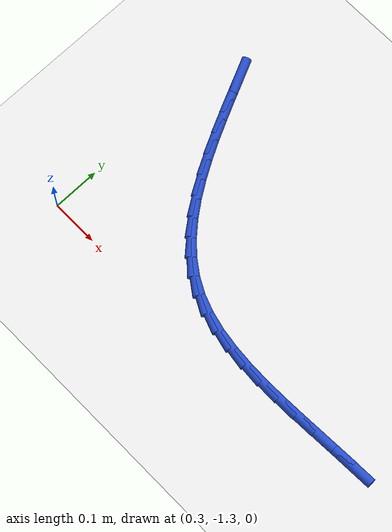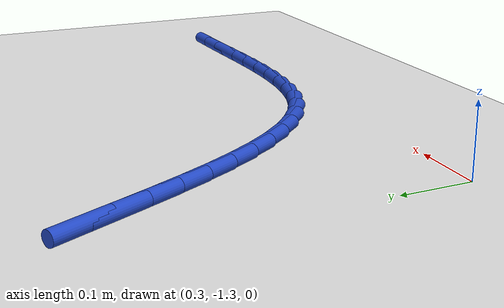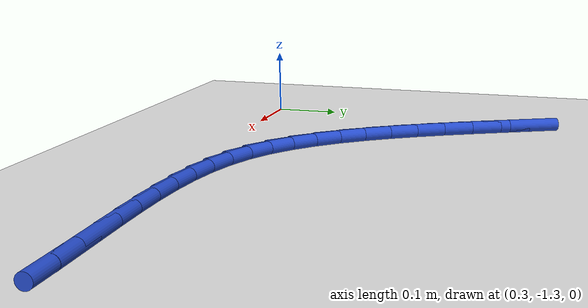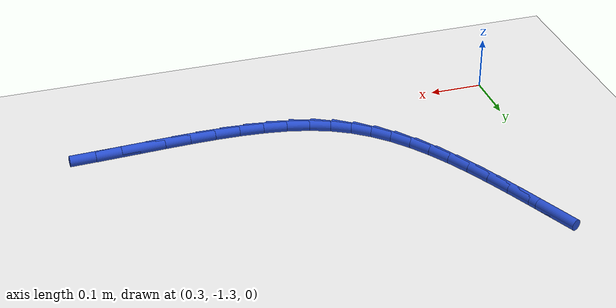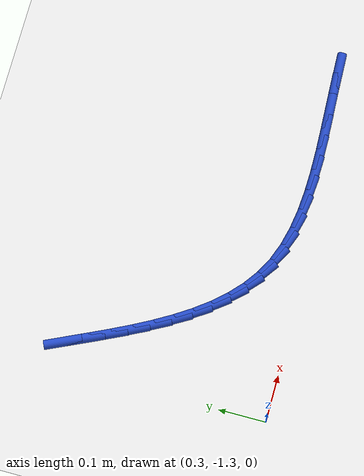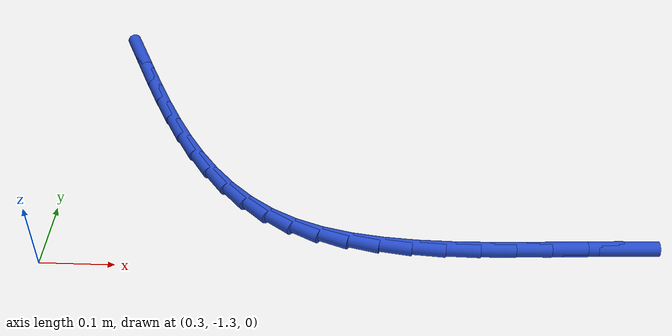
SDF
<sdf version="1.6">
 <world name="default">
  <model name="ground_plane">
   <static>1</static>
   <link name="link">
    <collision name="collision">
     <geometry><plane><normal>0 0 1</normal><size>100 100</size></plane></geometry>
     <surface><friction><ode><mu>100</mu><mu2>50</mu2></ode></friction></surface>
    </collision>
    <visual name="visual">
     <cast_shadows>0</cast_shadows>
     <geometry><plane><normal>0 0 1</normal><size>100 100</size></plane></geometry>
     <material>
      <script><uri>file://media/materials/scripts/gazebo.material</uri><name>Gazebo/WhiteGlow</name></script>
     </material>
    </visual>
   </link>
  </model>
  <model name="line">
   <link name="link_128">
    <pose>1.07136148986577 -1.2569779851877985 0.01 0 1.57 0.03686564870963123</pose>
    <collision name="collision">
     <geometry><cylinder><radius>0.01</radius><length>0.08</length></cylinder></geometry>
    </collision>
    <visual name="visual">
     <material>
      <script><name>Gazebo/Blue</name><uri>file://media/materials/scripts/gazebo.material</uri></script>
     </material>
     <geometry><cylinder><radius>0.01</radius><length>0.08</length></cylinder></geometry>
    </visual>
   </link>
   <link name="link_129">
    <pose>1.024706182088031 -1.2586987429923218 0.01 0 1.57 0.045401393632448245</pose>
    <collision name="collision">
     <geometry><cylinder><radius>0.01</radius><length>0.08</length></cylinder></geometry>
    </collision>
    <visual name="visual">
     <material>
      <script><name>Gazebo/Blue</name><uri>file://media/materials/scripts/gazebo.material</uri></script>
     </material>
     <geometry><cylinder><radius>0.01</radius><length>0.08</length></cylinder></geometry>
    </visual>
   </link>
   <link name="link_130">
    <pose>0.9776322644401926 -1.2608374341443453 0.01 0 1.57 0.04546782009390897</pose>
    <collision name="collision">
     <geometry><cylinder><radius>0.01</radius><length>0.08</length></cylinder></geometry>
    </collision>
    <visual name="visual">
     <material>
      <script><name>Gazebo/Blue</name><uri>file://media/materials/scripts/gazebo.material</uri></script>
     </material>
     <geometry><cylinder><radius>0.01</radius><length>0.08</length></cylinder></geometry>
    </visual>
   </link>
   <link name="link_131">
    <pose>0.9304930931655089 -1.2629822277004208 0.01 0 1.57 0.0336175679589889</pose>
    <collision name="collision">
     <geometry><cylinder><radius>0.01</radius><length>0.08</length></cylinder></geometry>
    </collision>
    <visual name="visual">
     <material>
      <script><name>Gazebo/Blue</name><uri>file://media/materials/scripts/gazebo.material</uri></script>
     </material>
     <geometry><cylinder><radius>0.01</radius><length>0.08</length></cylinder></geometry>
    </visual>
   </link>
   <link name="link_132">
    <pose>0.8836518907340699 -1.2645575084808893 0.01 0 1.57 0.00931442792893046</pose>
    <collision name="collision">
     <geometry><cylinder><radius>0.01</radius><length>0.08</length></cylinder></geometry>
    </collision>
    <visual name="visual">
     <material>
      <script><name>Gazebo/Blue</name><uri>file://media/materials/scripts/gazebo.material</uri></script>
     </material>
     <geometry><cylinder><radius>0.01</radius><length>0.08</length></cylinder></geometry>
    </visual>
   </link>
   <link name="link_133">
    <pose>0.8374718796159634 -1.2649876613060924 0.01 0 1.57 -0.028573181236360053</pose>
    <collision name="collision">
     <geometry><cylinder><radius>0.01</radius><length>0.08</length></cylinder></geometry>
    </collision>
    <visual name="visual">
     <material>
      <script><name>Gazebo/Blue</name><uri>file://media/materials/scripts/gazebo.material</uri></script>
     </material>
     <geometry><cylinder><radius>0.01</radius><length>0.08</length></cylinder></geometry>
    </visual>
   </link>
   <link name="link_134">
    <pose>0.7923162822812766 -1.263697070996371 0.01 0 1.57 -0.08177100924146376</pose>
    <collision name="collision">
     <geometry><cylinder><radius>0.01</radius><length>0.08</length></cylinder></geometry>
    </collision>
    <visual name="visual">
     <material>
      <script><name>Gazebo/Blue</name><uri>file://media/materials/scripts/gazebo.material</uri></script>
     </material>
     <geometry><cylinder><radius>0.01</radius><length>0.08</length></cylinder></geometry>
    </visual>
   </link>
   <link name="link_135">
    <pose>0.7485483212000988 -1.2601101223720672 0.01 0 1.57 -0.15252732468885738</pose>
    <collision name="collision">
     <geometry><cylinder><radius>0.01</radius><length>0.08</length></cylinder></geometry>
    </collision>
    <visual name="visual">
     <material>
      <script><name>Gazebo/Blue</name><uri>file://media/materials/scripts/gazebo.material</uri></script>
     </material>
     <geometry><cylinder><radius>0.01</radius><length>0.08</length></cylinder></geometry>
    </visual>
   </link>
   <link name="link_136">
    <pose>0.7065312188425174 -1.253651200253522 0.01 0 1.57 -0.24334475537236397</pose>
    <collision name="collision">
     <geometry><cylinder><radius>0.01</radius><length>0.08</length></cylinder></geometry>
    </collision>
    <visual name="visual">
     <material>
      <script><name>Gazebo/Blue</name><uri>file://media/materials/scripts/gazebo.material</uri></script>
     </material>
     <geometry><cylinder><radius>0.01</radius><length>0.08</length></cylinder></geometry>
    </visual>
   </link>
   <link name="link_137">
    <pose>0.6666281976786217 -1.2437446894610764 0.01 0 1.57 -0.3563103941112327</pose>
    <collision name="collision">
     <geometry><cylinder><radius>0.01</radius><length>0.08</length></cylinder></geometry>
    </collision>
    <visual name="visual">
     <material>
      <script><name>Gazebo/Blue</name><uri>file://media/materials/scripts/gazebo.material</uri></script>
     </material>
     <geometry><cylinder><radius>0.01</radius><length>0.08</length></cylinder></geometry>
    </visual>
   </link>
   <link name="link_138">
    <pose>0.6292024801784992 -1.2298149748150722 0.01 0 1.57 -0.4897616001951733</pose>
    <collision name="collision">
     <geometry><cylinder><radius>0.01</radius><length>0.08</length></cylinder></geometry>
    </collision>
    <visual name="visual">
     <material>
      <script><name>Gazebo/Blue</name><uri>file://media/materials/scripts/gazebo.material</uri></script>
     </material>
     <geometry><cylinder><radius>0.01</radius><length>0.08</length></cylinder></geometry>
    </visual>
   </link>
   <link name="link_139">
    <pose>0.5945733605093906 -1.2113548158176486 0.01 0 1.57 -0.6222187151911861</pose>
    <collision name="collision">
     <geometry><cylinder><radius>0.01</radius><length>0.08</length></cylinder></geometry>
    </collision>
    <visual name="visual">
     <material>
      <script><name>Gazebo/Blue</name><uri>file://media/materials/scripts/gazebo.material</uri></script>
     </material>
     <geometry><cylinder><radius>0.01</radius><length>0.08</length></cylinder></geometry>
    </visual>
   </link>
   <link name="link_140">
    <pose>0.5626667135732935 -1.1884693315507597 0.01 0 1.57 -0.73959525484013</pose>
    <collision name="collision">
     <geometry><cylinder><radius>0.01</radius><length>0.08</length></cylinder></geometry>
    </collision>
    <visual name="visual">
     <material>
      <script><name>Gazebo/Blue</name><uri>file://media/materials/scripts/gazebo.material</uri></script>
     </material>
     <geometry><cylinder><radius>0.01</radius><length>0.08</length></cylinder></geometry>
    </visual>
   </link>
   <link name="link_141">
    <pose>0.5332010504772371 -1.1615864041574886 0.01 0 1.57 -0.8397367436955989</pose>
    <collision name="collision">
     <geometry><cylinder><radius>0.01</radius><length>0.08</length></cylinder></geometry>
    </collision>
    <visual name="visual">
     <material>
      <script><name>Gazebo/Blue</name><uri>file://media/materials/scripts/gazebo.material</uri></script>
     </material>
     <geometry><cylinder><radius>0.01</radius><length>0.08</length></cylinder></geometry>
    </visual>
   </link>
   <link name="link_142">
    <pose>0.5058930202068558 -1.1311368141846685 0.01 0 1.57 -0.9226495845835373</pose>
    <collision name="collision">
     <geometry><cylinder><radius>0.01</radius><length>0.08</length></cylinder></geometry>
    </collision>
    <visual name="visual">
     <material>
      <script><name>Gazebo/Blue</name><uri>file://media/materials/scripts/gazebo.material</uri></script>
     </material>
     <geometry><cylinder><radius>0.01</radius><length>0.08</length></cylinder></geometry>
    </visual>
   </link>
   <link name="link_143">
    <pose>0.48045927174778574 -1.0975513421791343 0.01 0 1.57 -0.9895176368353092</pose>
    <collision name="collision">
     <geometry><cylinder><radius>0.01</radius><length>0.08</length></cylinder></geometry>
    </collision>
    <visual name="visual">
     <material>
      <script><name>Gazebo/Blue</name><uri>file://media/materials/scripts/gazebo.material</uri></script>
     </material>
     <geometry><cylinder><radius>0.01</radius><length>0.08</length></cylinder></geometry>
    </visual>
   </link>
   <link name="link_144">
    <pose>0.456616454085661 -1.0612607686877202 0.01 0 1.57 -1.0419667224095603</pose>
    <collision name="collision">
     <geometry><cylinder><radius>0.01</radius><length>0.08</length></cylinder></geometry>
    </collision>
    <visual name="visual">
     <material>
      <script><name>Gazebo/Blue</name><uri>file://media/materials/scripts/gazebo.material</uri></script>
     </material>
     <geometry><cylinder><radius>0.01</radius><length>0.08</length></cylinder></geometry>
    </visual>
   </link>
   <link name="link_145">
    <pose>0.4340812162061167 -1.0226958742572605 0.01 0 1.57 -1.081613005288508</pose>
    <collision name="collision">
     <geometry><cylinder><radius>0.01</radius><length>0.08</length></cylinder></geometry>
    </collision>
    <visual name="visual">
     <material>
      <script><name>Gazebo/Blue</name><uri>file://media/materials/scripts/gazebo.material</uri></script>
     </material>
     <geometry><cylinder><radius>0.01</radius><length>0.08</length></cylinder></geometry>
    </visual>
   </link>
   <link name="link_146">
    <pose>0.41257020709478787 -0.9822874394345886 0.01 0 1.57 -1.1098393077090796</pose>
    <collision name="collision">
     <geometry><cylinder><radius>0.01</radius><length>0.08</length></cylinder></geometry>
    </collision>
    <visual name="visual">
     <material>
      <script><name>Gazebo/Blue</name><uri>file://media/materials/scripts/gazebo.material</uri></script>
     </material>
     <geometry><cylinder><radius>0.01</radius><length>0.08</length></cylinder></geometry>
    </visual>
   </link>
   <link name="link_147">
    <pose>0.39180007573730896 -0.9404662447665393 0.01 0 1.57 -1.1277083796345488</pose>
    <collision name="collision">
     <geometry><cylinder><radius>0.01</radius><length>0.08</length></cylinder></geometry>
    </collision>
    <visual name="visual">
     <material>
      <script><name>Gazebo/Blue</name><uri>file://media/materials/scripts/gazebo.material</uri></script>
     </material>
     <geometry><cylinder><radius>0.01</radius><length>0.08</length></cylinder></geometry>
    </visual>
   </link>
   <link name="link_148">
    <pose>0.37148747111931546 -0.8976630707999473 0.01 0 1.57 -1.1359437170907056</pose>
    <collision name="collision">
     <geometry><cylinder><radius>0.01</radius><length>0.08</length></cylinder></geometry>
    </collision>
    <visual name="visual">
     <material>
      <script><name>Gazebo/Blue</name><uri>file://media/materials/scripts/gazebo.material</uri></script>
     </material>
     <geometry><cylinder><radius>0.01</radius><length>0.08</length></cylinder></geometry>
    </visual>
   </link>
   <link name="link_149">
    <pose>0.3513490422264423 -0.8543086980816464 0.01 0 1.57 -1.134936906101492</pose>
    <collision name="collision">
     <geometry><cylinder><radius>0.01</radius><length>0.08</length></cylinder></geometry>
    </collision>
    <visual name="visual">
     <material>
      <script><name>Gazebo/Blue</name><uri>file://media/materials/scripts/gazebo.material</uri></script>
     </material>
     <geometry><cylinder><radius>0.01</radius><length>0.08</length></cylinder></geometry>
    </visual>
   </link>
  </model>
 </world>
</sdf>
